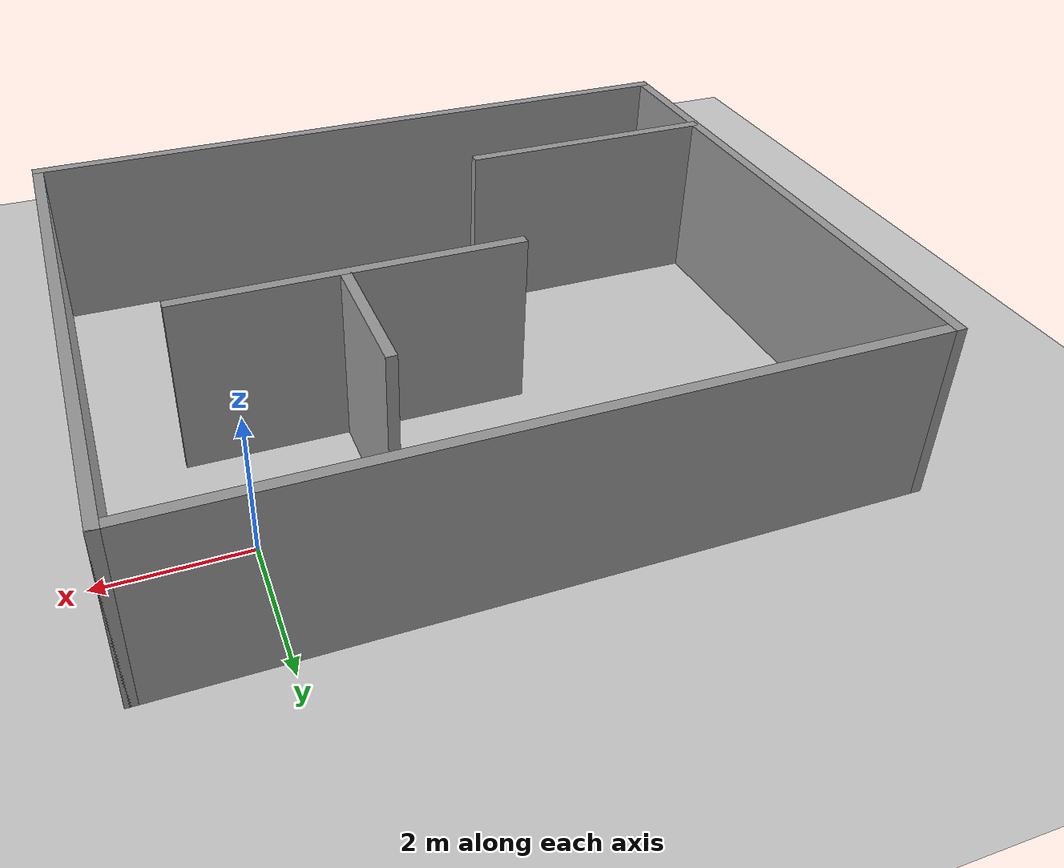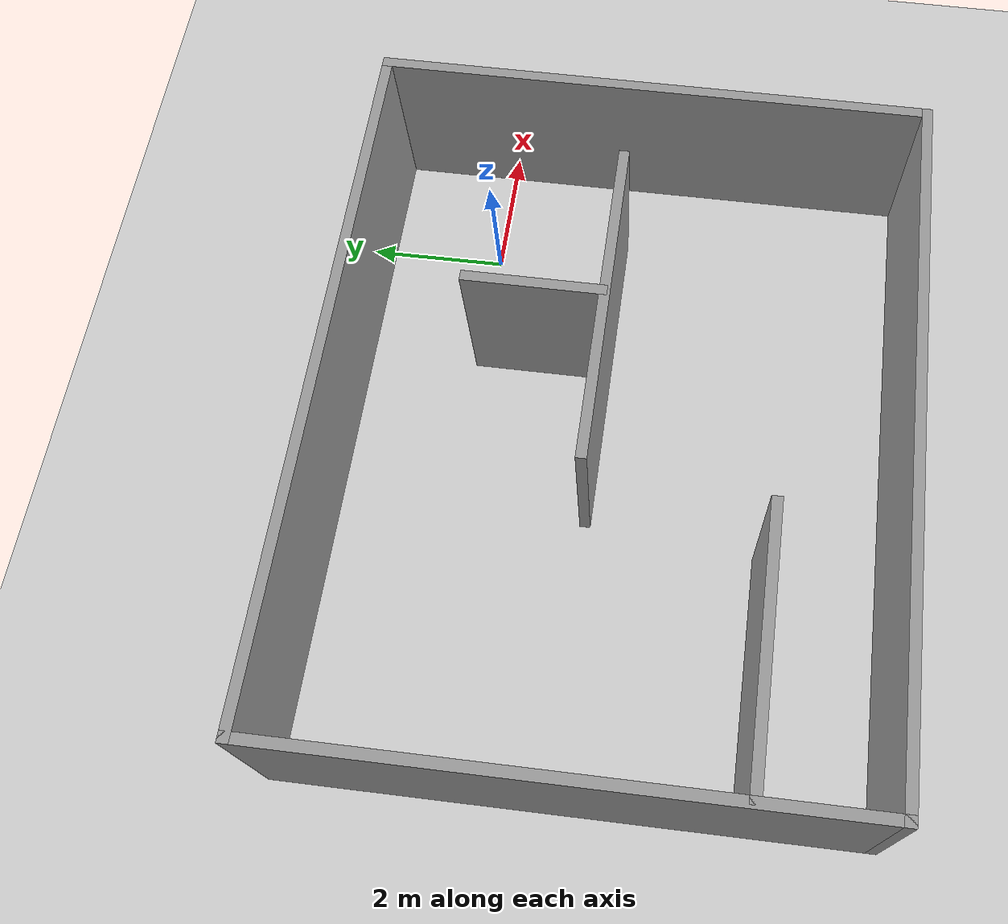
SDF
<sdf version="1.7">
 <world name="default">
  <light name="sun" type="directional">
   <pose>0 0 10 0 -0 0</pose>
   <diffuse>0.8 0.8 0.8 1</diffuse>
   <specular>0.2 0.2 0.2 1</specular>
   <attenuation>
    <range>1000</range>
    <constant>0.9</constant>
    <linear>0.01</linear>
    <quadratic>0.001</quadratic>
   </attenuation>
   <direction>-0.5 0.1 -0.9</direction>
   <spot><inner_angle>0</inner_angle><outer_angle>0</outer_angle><falloff>0</falloff></spot>
  </light>
  <model name="ground_plane">
   <static>1</static>
   <link name="link">
    <collision name="collision">
     <geometry><plane><normal>0 0 1</normal><size>100 100</size></plane></geometry>
     <surface>
      <contact><collide_bitmask>65535</collide_bitmask></contact>
      <friction><ode><mu>100</mu><mu2>50</mu2></ode></friction>
     </surface>
    </collision>
    <visual name="visual">
     <cast_shadows>0</cast_shadows>
     <geometry><plane><normal>0 0 1</normal><size>100 100</size></plane></geometry>
     <material>
      <script><uri>file://media/materials/scripts/gazebo.material</uri><name>Gazebo/Grey</name></script>
     </material>
    </visual>
   </link>
  </model>
  <gravity>0 0 -9.8</gravity>
  <magnetic_field>6e-06 2.3e-05 -4.2e-05</magnetic_field>
  <atmosphere type="adiabatic"/>
  <physics type="ode">
   <max_step_size>0.001</max_step_size>
   <real_time_factor>1</real_time_factor>
   <real_time_update_rate>1000</real_time_update_rate>
  </physics>
  <scene><ambient>0.4 0.4 0.4 1</ambient><background>0.7 0.7 0.7 1</background><shadows>1</shadows></scene>
  <spherical_coordinates>
   <surface_model>EARTH_WGS84</surface_model>
   <latitude_deg>0</latitude_deg>
   <longitude_deg>0</longitude_deg>
   <elevation>0</elevation>
   <heading_deg>0</heading_deg>
  </spherical_coordinates>
  <model name="Untitled">
   <pose>-3.20615 -2.1849 0 0 -0 0</pose>
   <link name="Wall_11">
    <collision name="Wall_11_Collision">
     <geometry><box><size>10 0.15 2.5</size></box></geometry>
     <pose>0 0 1.25 0 -0 0</pose>
    </collision>
    <visual name="Wall_11_Visual">
     <pose>0 0 1.25 0 -0 0</pose>
     <geometry><box><size>10 0.15 2.5</size></box></geometry>
     <material>
      <script><uri>file://media/materials/scripts/gazebo.material</uri><name>Gazebo/Grey</name></script>
      <ambient>1 1 1 1</ambient>
     </material>
     <meta><layer>0</layer></meta>
    </visual>
    <pose>0 -3.925 0 0 -0 3.14159</pose>
   </link>
   <link name="Wall_12">
    <collision name="Wall_12_Collision">
     <geometry><box><size>8 0.15 2.5</size></box></geometry>
     <pose>0 0 1.25 0 -0 0</pose>
    </collision>
    <visual name="Wall_12_Visual">
     <pose>0 0 1.25 0 -0 0</pose>
     <geometry><box><size>8 0.15 2.5</size></box></geometry>
     <material>
      <script><uri>file://media/materials/scripts/gazebo.material</uri><name>Gazebo/Grey</name></script>
      <ambient>1 1 1 1</ambient>
     </material>
     <meta><layer>0</layer></meta>
    </visual>
    <pose>-4.925 -0 0 0 -0 1.5708</pose>
   </link>
   <link name="Wall_13">
    <collision name="Wall_13_Collision">
     <geometry><box><size>10 0.15 2.5</size></box></geometry>
     <pose>0 0 1.25 0 -0 0</pose>
    </collision>
    <visual name="Wall_13_Visual">
     <pose>0 0 1.25 0 -0 0</pose>
     <geometry><box><size>10 0.15 2.5</size></box></geometry>
     <material>
      <script><uri>file://media/materials/scripts/gazebo.material</uri><name>Gazebo/Grey</name></script>
      <ambient>1 1 1 1</ambient>
     </material>
     <meta><layer>0</layer></meta>
    </visual>
    <pose>0 3.925 0 0 -0 0</pose>
   </link>
   <link name="Wall_19">
    <collision name="Wall_19_Collision">
     <geometry><box><size>3.75 0.15 2.5</size></box></geometry>
     <pose>0 0 1.25 0 -0 0</pose>
    </collision>
    <visual name="Wall_19_Visual">
     <pose>0 0 1.25 0 -0 0</pose>
     <geometry><box><size>3.75 0.15 2.5</size></box></geometry>
     <material>
      <script><uri>file://media/materials/scripts/gazebo.material</uri><name>Gazebo/Grey</name></script>
      <ambient>1 1 1 1</ambient>
     </material>
     <meta><layer>0</layer></meta>
    </visual>
    <pose>-3.07981 -2.18553 0 0 -0 0</pose>
   </link>
   <link name="Wall_22">
    <collision name="Wall_22_Collision">
     <geometry><box><size>4.75 0.15 2.5</size></box></geometry>
     <pose>0 0 1.25 0 -0 0</pose>
    </collision>
    <visual name="Wall_22_Visual">
     <pose>0 0 1.25 0 -0 0</pose>
     <geometry><box><size>4.75 0.15 2.5</size></box></geometry>
     <material>
      <script><uri>file://media/materials/scripts/gazebo.material</uri><name>Gazebo/Grey</name></script>
      <ambient>1 1 1 1</ambient>
     </material>
     <meta><layer>0</layer></meta>
    </visual>
    <pose>1.38256 0.308558 0 0 -0 0</pose>
   </link>
   <link name="Wall_25">
    <collision name="Wall_25_Collision">
     <geometry><box><size>2 0.15 2.5</size></box></geometry>
     <pose>0 0 1.25 0 -0 0</pose>
    </collision>
    <visual name="Wall_25_Visual">
     <pose>0 0 1.25 0 -0 0</pose>
     <geometry><box><size>2 0.15 2.5</size></box></geometry>
     <material>
      <script><uri>file://media/materials/scripts/gazebo.material</uri><name>Gazebo/Grey</name></script>
      <ambient>1 1 1 1</ambient>
     </material>
     <meta><layer>0</layer></meta>
    </visual>
    <pose>1.47607 1.27378 0 0 -0 1.5708</pose>
   </link>
   <link name="Wall_9">
    <collision name="Wall_9_Collision">
     <geometry><box><size>8 0.15 2.5</size></box></geometry>
     <pose>0 0 1.25 0 -0 0</pose>
    </collision>
    <visual name="Wall_9_Visual">
     <pose>0 0 1.25 0 -0 0</pose>
     <geometry><box><size>8 0.15 2.5</size></box></geometry>
     <material>
      <script><uri>file://media/materials/scripts/gazebo.material</uri><name>Gazebo/Grey</name></script>
      <ambient>1 1 1 1</ambient>
     </material>
     <meta><layer>0</layer></meta>
    </visual>
    <pose>4.925 -0 0 0 -0 -1.5708</pose>
   </link>
   <static>1</static>
  </model>
 </world>
</sdf>
